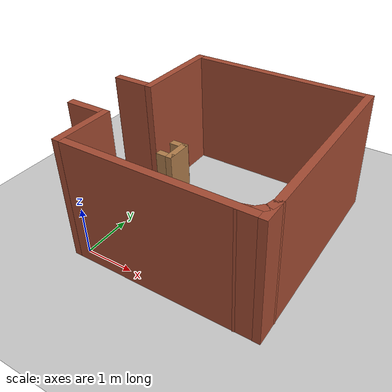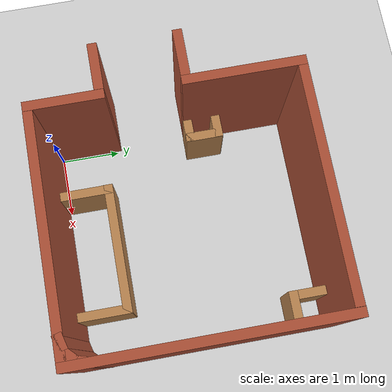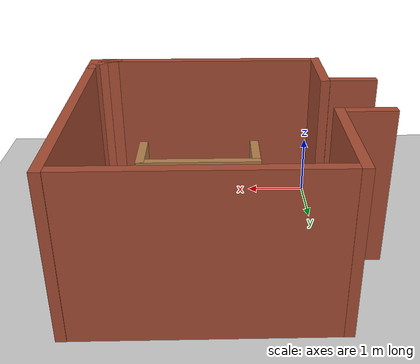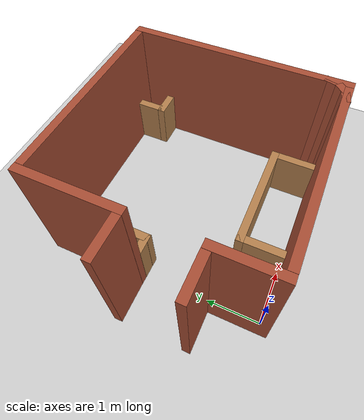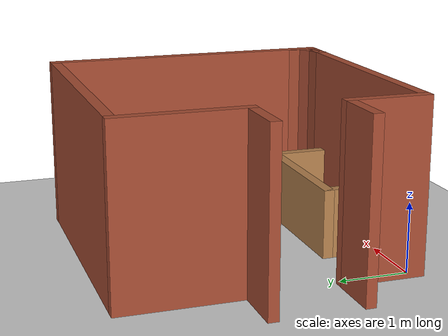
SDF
<sdf version="1.6">
 <world name="default">
  <light name="sun" type="directional">
   <pose>0 0 10 0 -0 0</pose>
   <diffuse>0.8 0.8 0.8 1</diffuse>
   <specular>0.1 0.1 0.1 1</specular>
   <attenuation>
    <range>1000</range>
    <constant>0.9</constant>
    <linear>0.01</linear>
    <quadratic>0.001</quadratic>
   </attenuation>
   <direction>-0.5 0.5 -1</direction>
  </light>
  <model name="ground_plane">
   <static>1</static>
   <link name="link">
    <collision name="collision">
     <geometry><plane><normal>0 0 1</normal><size>100 100</size></plane></geometry>
     <surface><friction><ode><mu>100</mu><mu2>50</mu2></ode></friction></surface>
    </collision>
    <visual name="visual">
     <cast_shadows>0</cast_shadows>
     <geometry><plane><normal>0 0 1</normal><size>100 100</size></plane></geometry>
     <material>
      <script><uri>file://media/materials/scripts/gazebo.material</uri><name>Gazebo/Grey</name></script>
     </material>
    </visual>
   </link>
  </model>
  <gravity>0 0 -9.8</gravity>
  <magnetic_field>6e-06 2.3e-05 -4.2e-05</magnetic_field>
  <atmosphere type="adiabatic"/>
  <physics name="default_physics" default="0" type="ode">
   <max_step_size>0.001</max_step_size>
   <real_time_factor>1</real_time_factor>
   <real_time_update_rate>1000</real_time_update_rate>
  </physics>
  <scene><ambient>0.4 0.4 0.4 1</ambient><background>0.7 0.7 0.7 1</background><shadows>1</shadows></scene>
  <spherical_coordinates>
   <surface_model>EARTH_WGS84</surface_model>
   <latitude_deg>0</latitude_deg>
   <longitude_deg>0</longitude_deg>
   <elevation>0</elevation>
   <heading_deg>0</heading_deg>
  </spherical_coordinates>
  <model name="living_room">
   <pose>1.42038 1.97459 0 0 -0 0</pose>
   <link name="Wall_0">
    <collision name="Wall_0_Collision">
     <geometry><box><size>3.65 0.15 2.5</size></box></geometry>
     <pose>0 0 1.25 0 -0 0</pose>
    </collision>
    <visual name="Wall_0_Visual">
     <pose>0 0 1.25 0 -0 0</pose>
     <geometry><box><size>3.65 0.15 2.5</size></box></geometry>
     <material>
      <script><uri>file://media/materials/scripts/gazebo.material</uri><name>Gazebo/Bricks</name></script>
      <ambient>1 1 1 1</ambient>
     </material>
     <meta><layer>0</layer></meta>
    </visual>
    <pose>0.368394 2.07812 0 0 -0 0</pose>
   </link>
   <link name="Wall_10">
    <collision name="Wall_10_Collision">
     <geometry><box><size>1.23 0.15 2.5</size></box></geometry>
     <pose>0 0 1.25 0 -0 0</pose>
    </collision>
    <visual name="Wall_10_Visual">
     <pose>0 0 1.25 0 -0 0</pose>
     <geometry><box><size>1.23 0.15 2.5</size></box></geometry>
     <material>
      <script><uri>file://media/materials/scripts/gazebo.material</uri><name>Gazebo/Bricks</name></script>
      <ambient>1 1 1 1</ambient>
     </material>
     <meta><layer>0</layer></meta>
    </visual>
    <pose>-1.52964 -1.5267 0 0 -0 1.5708</pose>
   </link>
   <link name="Wall_12">
    <collision name="Wall_12_Collision">
     <geometry><box><size>0.38 0.15 1</size></box></geometry>
     <pose>0 0 0.5 0 -0 0</pose>
    </collision>
    <visual name="Wall_12_Visual">
     <pose>0 0 0.5 0 -0 0</pose>
     <geometry><box><size>0.38 0.15 1</size></box></geometry>
     <material>
      <script><uri>file://media/materials/scripts/gazebo.material</uri><name>Gazebo/Wood</name></script>
      <ambient>1 1 1 1</ambient>
     </material>
     <meta><layer>0</layer></meta>
    </visual>
    <pose>-1.27581 0.315099 0 0 -0 0</pose>
   </link>
   <link name="Wall_15">
    <collision name="Wall_15_Collision">
     <geometry><box><size>0.62 0.15 1</size></box></geometry>
     <pose>0 0 0.5 0 -0 0</pose>
    </collision>
    <visual name="Wall_15_Visual">
     <pose>0 0 0.5 0 -0 0</pose>
     <geometry><box><size>0.62 0.15 1</size></box></geometry>
     <material>
      <script><uri>file://media/materials/scripts/gazebo.material</uri><name>Gazebo/Wood</name></script>
      <ambient>1 1 1 1</ambient>
     </material>
     <meta><layer>0</layer></meta>
    </visual>
    <pose>-1.14877 0.547402 0 0 -0 1.5708</pose>
   </link>
   <link name="Wall_17">
    <collision name="Wall_17_Collision">
     <geometry><box><size>0.38 0.15 1</size></box></geometry>
     <pose>0 0 0.5 0 -0 0</pose>
    </collision>
    <visual name="Wall_17_Visual">
     <pose>0 0 0.5 0 -0 0</pose>
     <geometry><box><size>0.38 0.15 1</size></box></geometry>
     <material>
      <script><uri>file://media/materials/scripts/gazebo.material</uri><name>Gazebo/Wood</name></script>
      <ambient>1 1 1 1</ambient>
     </material>
     <meta><layer>0</layer></meta>
    </visual>
    <pose>-1.26895 0.793416 0 0 -0 3.14159</pose>
   </link>
   <link name="Wall_19">
    <collision name="Wall_19_Collision">
     <geometry><box><size>0.6 0.15 1</size></box></geometry>
     <pose>0 0 0.5 0 -0 0</pose>
    </collision>
    <visual name="Wall_19_Visual">
     <pose>0 0 0.5 0 -0 0</pose>
     <geometry><box><size>0.6 0.15 1</size></box></geometry>
     <material>
      <script><uri>file://media/materials/scripts/gazebo.material</uri><name>Gazebo/Wood</name></script>
      <ambient>1 1 1 1</ambient>
     </material>
     <meta><layer>0</layer></meta>
    </visual>
    <pose>1.77181 1.70512 0 0 0 -1.5708</pose>
   </link>
   <link name="Wall_2">
    <collision name="Wall_2_Collision">
     <geometry><box><size>4.3 0.15 2.5</size></box></geometry>
     <pose>0 0 1.25 0 -0 0</pose>
    </collision>
    <visual name="Wall_2_Visual">
     <pose>0 0 1.25 0 -0 0</pose>
     <geometry><box><size>4.3 0.15 2.5</size></box></geometry>
     <material>
      <script><uri>file://media/materials/scripts/gazebo.material</uri><name>Gazebo/Bricks</name></script>
      <ambient>1 1 1 1</ambient>
     </material>
     <meta><layer>0</layer></meta>
    </visual>
    <pose>2.27109 0.00582 0 0 0 -1.5708</pose>
   </link>
   <link name="Wall_21">
    <collision name="Wall_21_Collision">
     <geometry><box><size>0.5 0.15 1</size></box></geometry>
     <pose>0 0 0.5 0 -0 0</pose>
    </collision>
    <visual name="Wall_21_Visual">
     <pose>0 0 0.5 0 -0 0</pose>
     <geometry><box><size>0.5 0.15 1</size></box></geometry>
     <material>
      <script><uri>file://media/materials/scripts/gazebo.material</uri><name>Gazebo/Wood</name></script>
      <ambient>1 1 1 1</ambient>
     </material>
     <meta><layer>0</layer></meta>
    </visual>
    <pose>1.94581 1.46912 0 0 -0 0</pose>
   </link>
   <link name="Wall_23">
    <collision name="Wall_23_Collision">
     <geometry><box><size>0.88 0.15 1</size></box></geometry>
     <pose>0 0 0.5 0 -0 0</pose>
    </collision>
    <visual name="Wall_23_Visual">
     <pose>0 0 0.5 0 -0 0</pose>
     <geometry><box><size>0.88 0.15 1</size></box></geometry>
     <material>
      <script><uri>file://media/materials/scripts/gazebo.material</uri><name>Gazebo/Wood</name></script>
      <ambient>1 1 1 1</ambient>
     </material>
     <meta><layer>0</layer></meta>
    </visual>
    <pose>-0.49619 -1.56388 0 0 -0 1.5708</pose>
   </link>
   <link name="Wall_25">
    <collision name="Wall_25_Collision">
     <geometry><box><size>2.16 0.15 1</size></box></geometry>
     <pose>0 0 0.5 0 -0 0</pose>
    </collision>
    <visual name="Wall_25_Visual">
     <pose>0 0 0.5 0 -0 0</pose>
     <geometry><box><size>2.16 0.15 1</size></box></geometry>
     <material>
      <script><uri>file://media/materials/scripts/gazebo.material</uri><name>Gazebo/Wood</name></script>
      <ambient>1 1 1 1</ambient>
     </material>
     <meta><layer>0</layer></meta>
    </visual>
    <pose>0.504809 -1.18388 0 0 -0 0</pose>
   </link>
   <link name="Wall_27">
    <collision name="Wall_27_Collision">
     <geometry><box><size>0.88 0.15 1</size></box></geometry>
     <pose>0 0 0.5 0 -0 0</pose>
    </collision>
    <visual name="Wall_27_Visual">
     <pose>0 0 0.5 0 -0 0</pose>
     <geometry><box><size>0.88 0.15 1</size></box></geometry>
     <material>
      <script><uri>file://media/materials/scripts/gazebo.material</uri><name>Gazebo/Wood</name></script>
      <ambient>1 1 1 1</ambient>
     </material>
     <meta><layer>0</layer></meta>
    </visual>
    <pose>1.5134 -1.55443 0 0 0 -1.5708</pose>
   </link>
   <link name="Wall_39">
    <collision name="Wall_39_Collision">
     <geometry><box><size>0.25 0.15 2.5</size></box></geometry>
     <pose>0 0 1.25 0 -0 0</pose>
    </collision>
    <visual name="Wall_39_Visual">
     <pose>0 0 1.25 0 -0 0</pose>
     <geometry><box><size>0.25 0.15 2.5</size></box></geometry>
     <material>
      <script><uri>file://media/materials/scripts/gazebo.material</uri><name>Gazebo/Bricks</name></script>
      <ambient>1 1 1 1</ambient>
     </material>
     <meta><layer>0</layer></meta>
    </visual>
    <pose>2.12701 -1.96165 0 0 0 -2.35619</pose>
   </link>
   <link name="Wall_4">
    <collision name="Wall_4_Collision">
     <geometry><box><size>3.65 0.15 2.5</size></box></geometry>
     <pose>0 0 1.25 0 -0 0</pose>
    </collision>
    <visual name="Wall_4_Visual">
     <pose>0 0 1.25 0 -0 0</pose>
     <geometry><box><size>3.65 0.15 2.5</size></box></geometry>
     <material>
      <script><uri>file://media/materials/scripts/gazebo.material</uri><name>Gazebo/Bricks</name></script>
      <ambient>1 1 1 1</ambient>
     </material>
     <meta><layer>0</layer></meta>
    </visual>
    <pose>0.371564 -2.0686 0 0 -0 3.14159</pose>
   </link>
   <link name="Wall_41">
    <collision name="Wall_41_Collision">
     <geometry><box><size>0.25 0.15 2.5</size></box></geometry>
     <pose>0 0 1.25 0 -0 0</pose>
    </collision>
    <visual name="Wall_41_Visual">
     <pose>0 0 1.25 0 -0 0</pose>
     <geometry><box><size>0.25 0.15 2.5</size></box></geometry>
     <material>
      <script><uri>file://media/materials/scripts/gazebo.material</uri><name>Gazebo/Bricks</name></script>
      <ambient>1 1 1 1</ambient>
     </material>
     <meta><layer>0</layer></meta>
    </visual>
    <pose>1.93354 -2.05102 0 0 -0 0.261799</pose>
   </link>
   <link name="Wall_43">
    <collision name="Wall_43_Collision">
     <geometry><box><size>0.25 0.15 2.5</size></box></geometry>
     <pose>0 0 1.25 0 -0 0</pose>
    </collision>
    <visual name="Wall_43_Visual">
     <pose>0 0 1.25 0 -0 0</pose>
     <geometry><box><size>0.25 0.15 2.5</size></box></geometry>
     <material>
      <script><uri>file://media/materials/scripts/gazebo.material</uri><name>Gazebo/Bricks</name></script>
      <ambient>1 1 1 1</ambient>
     </material>
     <meta><layer>0</layer></meta>
    </visual>
    <pose>2.25163 -1.75344 0 0 0 -1.8326</pose>
   </link>
   <link name="Wall_47">
    <collision name="Wall_47_Collision">
     <geometry><box><size>0.75 0.15 2.5</size></box></geometry>
     <pose>0 0 1.25 0 -0 0</pose>
    </collision>
    <visual name="Wall_47_Visual">
     <pose>0 0 1.25 0 -0 0</pose>
     <geometry><box><size>0.75 0.15 2.5</size></box></geometry>
     <material>
      <script><uri>file://media/materials/scripts/gazebo.material</uri><name>Gazebo/Bricks</name></script>
      <ambient>1 1 1 1</ambient>
     </material>
     <meta><layer>0</layer></meta>
    </visual>
    <pose>-1.98127 -0.984617 0 0 -0 0</pose>
   </link>
   <link name="Wall_6">
    <collision name="Wall_6_Collision">
     <geometry><box><size>1.91 0.15 2.5</size></box></geometry>
     <pose>0 0 1.25 0 -0 0</pose>
    </collision>
    <visual name="Wall_6_Visual">
     <pose>0 0 1.25 0 -0 0</pose>
     <geometry><box><size>1.91 0.15 2.5</size></box></geometry>
     <material>
      <script><uri>file://media/materials/scripts/gazebo.material</uri><name>Gazebo/Bricks</name></script>
      <ambient>1 1 1 1</ambient>
     </material>
     <meta><layer>0</layer></meta>
    </visual>
    <pose>-1.53283 1.19812 0 0 0 -1.5708</pose>
   </link>
   <link name="Wall_8">
    <collision name="Wall_8_Collision">
     <geometry><box><size>0.75 0.15 2.5</size></box></geometry>
     <pose>0 0 1.25 0 -0 0</pose>
    </collision>
    <visual name="Wall_8_Visual">
     <pose>0 0 1.25 0 -0 0</pose>
     <geometry><box><size>0.75 0.15 2.5</size></box></geometry>
     <material>
      <script><uri>file://media/materials/scripts/gazebo.material</uri><name>Gazebo/Bricks</name></script>
      <ambient>1 1 1 1</ambient>
     </material>
     <meta><layer>0</layer></meta>
    </visual>
    <pose>-1.98142 0.319503 0 0 -0 0</pose>
   </link>
   <static>1</static>
  </model>
 </world>
</sdf>
